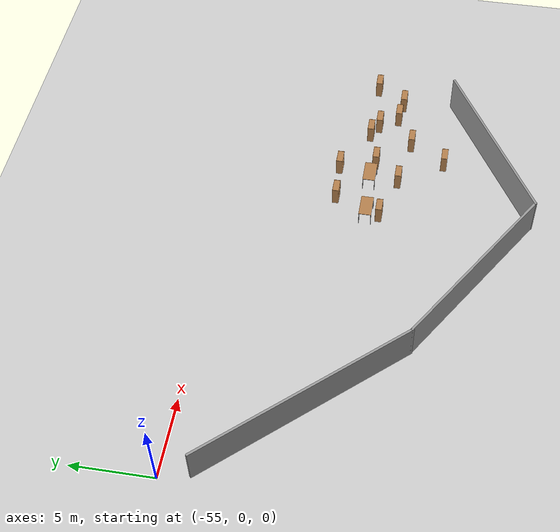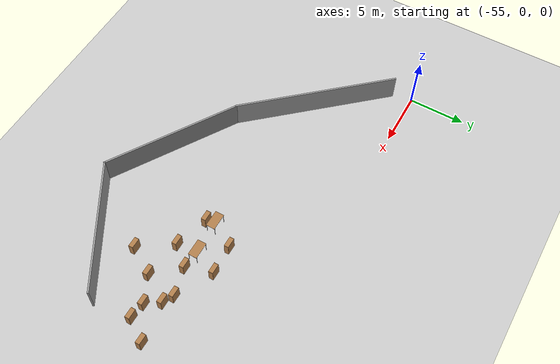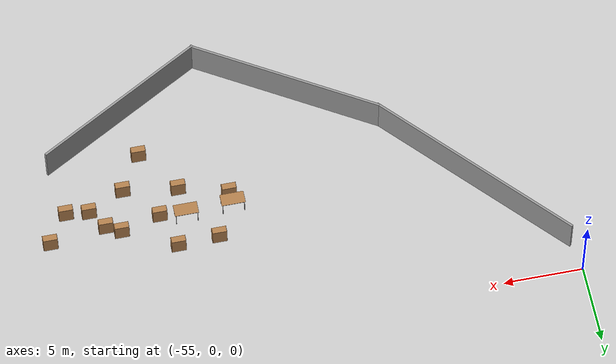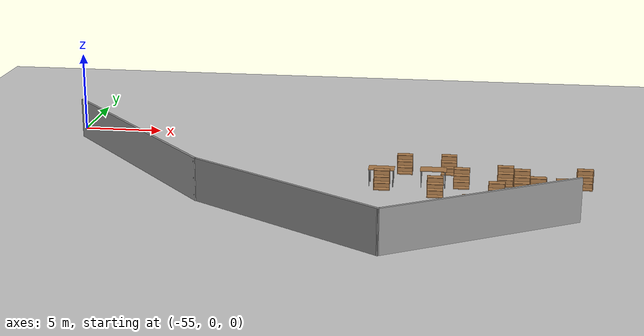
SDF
<sdf version="1.6">
 <world name="default">
  <model name="ground_plane">
   <static>1</static>
   <link name="link">
    <collision name="collision">
     <geometry><plane><normal>0 0 1</normal><size>100 100</size></plane></geometry>
     <surface><friction><ode><mu>100</mu><mu2>50</mu2></ode></friction></surface>
    </collision>
    <visual name="visual">
     <cast_shadows>0</cast_shadows>
     <geometry><plane><normal>0 0 1</normal><size>100 100</size></plane></geometry>
     <material>
      <script><uri>file://media/materials/scripts/gazebo.material</uri><name>Gazebo/Grey</name></script>
     </material>
    </visual>
   </link>
  </model>
  <model name="mall_new_reduce_size">
   <pose>-6.8092 7.5529 0 0 -0 0</pose>
   <link name="Wall_313">
    <collision name="Wall_313_Collision">
     <geometry><box><size>11.9714 0.15 2.5</size></box></geometry>
     <pose>0 0 1.25 0 -0 0</pose>
    </collision>
    <visual name="Wall_313_Visual">
     <pose>0 0 1.25 0 -0 0</pose>
     <geometry><box><size>11.9714 0.15 2.5</size></box></geometry>
     <material>
      <script><uri>file://media/materials/scripts/gazebo.material</uri><name>Gazebo/Grey</name></script>
      <ambient>1 1 1 1</ambient>
     </material>
     <meta><layer>0</layer></meta>
    </visual>
    <pose>-22.2421 -23.7733 0 0 -0 -2.61833</pose>
   </link>
   <link name="Wall_314">
    <collision name="Wall_314_Collision">
     <geometry><box><size>12.6291 0.15 2.5</size></box></geometry>
     <pose>0 0 1.25 0 -0 0</pose>
    </collision>
    <visual name="Wall_314_Visual">
     <pose>0 0 1.25 0 -0 0</pose>
     <geometry><box><size>12.6291 0.15 2.5</size></box></geometry>
     <material>
      <script><uri>file://media/materials/scripts/gazebo.material</uri><name>Gazebo/Grey</name></script>
      <ambient>1 1 1 1</ambient>
     </material>
     <meta><layer>0</layer></meta>
    </visual>
    <pose>-32.6669 -23.463 0 0 -0 2.5911</pose>
   </link>
   <link name="Wall_315">
    <collision name="Wall_315_Collision">
     <geometry><box><size>14.7593 0.15 2.5</size></box></geometry>
     <pose>0 0 1.25 0 -0 0</pose>
    </collision>
    <visual name="Wall_315_Visual">
     <pose>0 0 1.25 0 -0 0</pose>
     <geometry><box><size>14.7593 0.15 2.5</size></box></geometry>
     <material>
      <script><uri>file://media/materials/scripts/gazebo.material</uri><name>Gazebo/Grey</name></script>
      <ambient>1 1 1 1</ambient>
     </material>
     <meta><layer>0</layer></meta>
    </visual>
    <pose>-42.8797 -14.8029 0 0 -0 2.30518</pose>
   </link>
   <static>1</static>
  </model>
  <model name="bookshelf">
   <static>1</static>
   <link name="link">
    <inertial><mass>1</mass></inertial>
    <collision name="back">
     <pose>0 0.005 0.6 0 -0 0</pose>
     <geometry><box><size>0.9 0.01 1.2</size></box></geometry>
    </collision>
    <visual name="visual1">
     <pose>0 0.005 0.6 0 -0 0</pose>
     <geometry><box><size>0.9 0.01 1.2</size></box></geometry>
     <material>
      <script><uri>file://media/materials/scripts/gazebo.material</uri><name>Gazebo/Wood</name></script>
     </material>
    </visual>
    <collision name="left_side">
     <pose>0.45 -0.195 0.6 0 -0 0</pose>
     <geometry><box><size>0.02 0.4 1.2</size></box></geometry>
    </collision>
    <visual name="visual2">
     <pose>0.45 -0.195 0.6 0 -0 0</pose>
     <geometry><box><size>0.02 0.4 1.2</size></box></geometry>
     <material>
      <script><uri>file://media/materials/scripts/gazebo.material</uri><name>Gazebo/Wood</name></script>
     </material>
    </visual>
    <collision name="right_side">
     <pose>-0.45 -0.195 0.6 0 -0 0</pose>
     <geometry><box><size>0.02 0.4 1.2</size></box></geometry>
    </collision>
    <visual name="visual3">
     <pose>-0.45 -0.195 0.6 0 -0 0</pose>
     <geometry><box><size>0.02 0.4 1.2</size></box></geometry>
     <material>
      <script><uri>file://media/materials/scripts/gazebo.material</uri><name>Gazebo/Wood</name></script>
     </material>
    </visual>
    <collision name="bottom">
     <pose>0 -0.195 0.03 0 -0 0</pose>
     <geometry><box><size>0.88 0.4 0.06</size></box></geometry>
    </collision>
    <visual name="visual4">
     <pose>0 -0.195 0.03 0 -0 0</pose>
     <geometry><box><size>0.88 0.4 0.06</size></box></geometry>
     <material>
      <script><uri>file://media/materials/scripts/gazebo.material</uri><name>Gazebo/Wood</name></script>
     </material>
    </visual>
    <collision name="top">
     <pose>0 -0.195 1.19 0 -0 0</pose>
     <geometry><box><size>0.88 0.4 0.02</size></box></geometry>
    </collision>
    <visual name="visual5">
     <pose>0 -0.195 1.19 0 -0 0</pose>
     <geometry><box><size>0.88 0.4 0.02</size></box></geometry>
     <material>
      <script><uri>file://media/materials/scripts/gazebo.material</uri><name>Gazebo/Wood</name></script>
     </material>
    </visual>
    <collision name="low_shelf">
     <pose>0 -0.195 0.43 0 -0 0</pose>
     <geometry><box><size>0.88 0.4 0.02</size></box></geometry>
    </collision>
    <visual name="visual6">
     <pose>0 -0.195 0.43 0 -0 0</pose>
     <geometry><box><size>0.88 0.4 0.02</size></box></geometry>
     <material>
      <script><uri>file://media/materials/scripts/gazebo.material</uri><name>Gazebo/Wood</name></script>
     </material>
    </visual>
    <collision name="high_shelf">
     <pose>0 -0.195 0.8 0 -0 0</pose>
     <geometry><box><size>0.88 0.4 0.02</size></box></geometry>
    </collision>
    <visual name="visual7">
     <pose>0 -0.195 0.8 0 -0 0</pose>
     <geometry><box><size>0.88 0.4 0.02</size></box></geometry>
     <material>
      <script><uri>file://media/materials/scripts/gazebo.material</uri><name>Gazebo/Wood</name></script>
     </material>
    </visual>
   </link>
   <pose>-23.1977 -7.90874 0 0 -0 0</pose>
  </model>
  <model name="bookshelf_0">
   <static>1</static>
   <link name="link">
    <inertial><mass>1</mass></inertial>
    <collision name="back">
     <pose>0 0.005 0.6 0 -0 0</pose>
     <geometry><box><size>0.9 0.01 1.2</size></box></geometry>
    </collision>
    <visual name="visual1">
     <pose>0 0.005 0.6 0 -0 0</pose>
     <geometry><box><size>0.9 0.01 1.2</size></box></geometry>
     <material>
      <script><uri>file://media/materials/scripts/gazebo.material</uri><name>Gazebo/Wood</name></script>
     </material>
    </visual>
    <collision name="left_side">
     <pose>0.45 -0.195 0.6 0 -0 0</pose>
     <geometry><box><size>0.02 0.4 1.2</size></box></geometry>
    </collision>
    <visual name="visual2">
     <pose>0.45 -0.195 0.6 0 -0 0</pose>
     <geometry><box><size>0.02 0.4 1.2</size></box></geometry>
     <material>
      <script><uri>file://media/materials/scripts/gazebo.material</uri><name>Gazebo/Wood</name></script>
     </material>
    </visual>
    <collision name="right_side">
     <pose>-0.45 -0.195 0.6 0 -0 0</pose>
     <geometry><box><size>0.02 0.4 1.2</size></box></geometry>
    </collision>
    <visual name="visual3">
     <pose>-0.45 -0.195 0.6 0 -0 0</pose>
     <geometry><box><size>0.02 0.4 1.2</size></box></geometry>
     <material>
      <script><uri>file://media/materials/scripts/gazebo.material</uri><name>Gazebo/Wood</name></script>
     </material>
    </visual>
    <collision name="bottom">
     <pose>0 -0.195 0.03 0 -0 0</pose>
     <geometry><box><size>0.88 0.4 0.06</size></box></geometry>
    </collision>
    <visual name="visual4">
     <pose>0 -0.195 0.03 0 -0 0</pose>
     <geometry><box><size>0.88 0.4 0.06</size></box></geometry>
     <material>
      <script><uri>file://media/materials/scripts/gazebo.material</uri><name>Gazebo/Wood</name></script>
     </material>
    </visual>
    <collision name="top">
     <pose>0 -0.195 1.19 0 -0 0</pose>
     <geometry><box><size>0.88 0.4 0.02</size></box></geometry>
    </collision>
    <visual name="visual5">
     <pose>0 -0.195 1.19 0 -0 0</pose>
     <geometry><box><size>0.88 0.4 0.02</size></box></geometry>
     <material>
      <script><uri>file://media/materials/scripts/gazebo.material</uri><name>Gazebo/Wood</name></script>
     </material>
    </visual>
    <collision name="low_shelf">
     <pose>0 -0.195 0.43 0 -0 0</pose>
     <geometry><box><size>0.88 0.4 0.02</size></box></geometry>
    </collision>
    <visual name="visual6">
     <pose>0 -0.195 0.43 0 -0 0</pose>
     <geometry><box><size>0.88 0.4 0.02</size></box></geometry>
     <material>
      <script><uri>file://media/materials/scripts/gazebo.material</uri><name>Gazebo/Wood</name></script>
     </material>
    </visual>
    <collision name="high_shelf">
     <pose>0 -0.195 0.8 0 -0 0</pose>
     <geometry><box><size>0.88 0.4 0.02</size></box></geometry>
    </collision>
    <visual name="visual7">
     <pose>0 -0.195 0.8 0 -0 0</pose>
     <geometry><box><size>0.88 0.4 0.02</size></box></geometry>
     <material>
      <script><uri>file://media/materials/scripts/gazebo.material</uri><name>Gazebo/Wood</name></script>
     </material>
    </visual>
   </link>
   <pose>-24.4874 -9.77835 0 0 -0 0</pose>
  </model>
  <model name="bookshelf_2">
   <static>1</static>
   <link name="link">
    <inertial><mass>1</mass></inertial>
    <collision name="back">
     <pose>0 0.005 0.6 0 -0 0</pose>
     <geometry><box><size>0.9 0.01 1.2</size></box></geometry>
    </collision>
    <visual name="visual1">
     <pose>0 0.005 0.6 0 -0 0</pose>
     <geometry><box><size>0.9 0.01 1.2</size></box></geometry>
     <material>
      <script><uri>file://media/materials/scripts/gazebo.material</uri><name>Gazebo/Wood</name></script>
     </material>
    </visual>
    <collision name="left_side">
     <pose>0.45 -0.195 0.6 0 -0 0</pose>
     <geometry><box><size>0.02 0.4 1.2</size></box></geometry>
    </collision>
    <visual name="visual2">
     <pose>0.45 -0.195 0.6 0 -0 0</pose>
     <geometry><box><size>0.02 0.4 1.2</size></box></geometry>
     <material>
      <script><uri>file://media/materials/scripts/gazebo.material</uri><name>Gazebo/Wood</name></script>
     </material>
    </visual>
    <collision name="right_side">
     <pose>-0.45 -0.195 0.6 0 -0 0</pose>
     <geometry><box><size>0.02 0.4 1.2</size></box></geometry>
    </collision>
    <visual name="visual3">
     <pose>-0.45 -0.195 0.6 0 -0 0</pose>
     <geometry><box><size>0.02 0.4 1.2</size></box></geometry>
     <material>
      <script><uri>file://media/materials/scripts/gazebo.material</uri><name>Gazebo/Wood</name></script>
     </material>
    </visual>
    <collision name="bottom">
     <pose>0 -0.195 0.03 0 -0 0</pose>
     <geometry><box><size>0.88 0.4 0.06</size></box></geometry>
    </collision>
    <visual name="visual4">
     <pose>0 -0.195 0.03 0 -0 0</pose>
     <geometry><box><size>0.88 0.4 0.06</size></box></geometry>
     <material>
      <script><uri>file://media/materials/scripts/gazebo.material</uri><name>Gazebo/Wood</name></script>
     </material>
    </visual>
    <collision name="top">
     <pose>0 -0.195 1.19 0 -0 0</pose>
     <geometry><box><size>0.88 0.4 0.02</size></box></geometry>
    </collision>
    <visual name="visual5">
     <pose>0 -0.195 1.19 0 -0 0</pose>
     <geometry><box><size>0.88 0.4 0.02</size></box></geometry>
     <material>
      <script><uri>file://media/materials/scripts/gazebo.material</uri><name>Gazebo/Wood</name></script>
     </material>
    </visual>
    <collision name="low_shelf">
     <pose>0 -0.195 0.43 0 -0 0</pose>
     <geometry><box><size>0.88 0.4 0.02</size></box></geometry>
    </collision>
    <visual name="visual6">
     <pose>0 -0.195 0.43 0 -0 0</pose>
     <geometry><box><size>0.88 0.4 0.02</size></box></geometry>
     <material>
      <script><uri>file://media/materials/scripts/gazebo.material</uri><name>Gazebo/Wood</name></script>
     </material>
    </visual>
    <collision name="high_shelf">
     <pose>0 -0.195 0.8 0 -0 0</pose>
     <geometry><box><size>0.88 0.4 0.02</size></box></geometry>
    </collision>
    <visual name="visual7">
     <pose>0 -0.195 0.8 0 -0 0</pose>
     <geometry><box><size>0.88 0.4 0.02</size></box></geometry>
     <material>
      <script><uri>file://media/materials/scripts/gazebo.material</uri><name>Gazebo/Wood</name></script>
     </material>
    </visual>
   </link>
   <pose>-26.7515 -8.37465 0 0 -0 0</pose>
  </model>
  <model name="bookshelf_3">
   <static>1</static>
   <link name="link">
    <inertial><mass>1</mass></inertial>
    <collision name="back">
     <pose>0 0.005 0.6 0 -0 0</pose>
     <geometry><box><size>0.9 0.01 1.2</size></box></geometry>
    </collision>
    <visual name="visual1">
     <pose>0 0.005 0.6 0 -0 0</pose>
     <geometry><box><size>0.9 0.01 1.2</size></box></geometry>
     <material>
      <script><uri>file://media/materials/scripts/gazebo.material</uri><name>Gazebo/Wood</name></script>
     </material>
    </visual>
    <collision name="left_side">
     <pose>0.45 -0.195 0.6 0 -0 0</pose>
     <geometry><box><size>0.02 0.4 1.2</size></box></geometry>
    </collision>
    <visual name="visual2">
     <pose>0.45 -0.195 0.6 0 -0 0</pose>
     <geometry><box><size>0.02 0.4 1.2</size></box></geometry>
     <material>
      <script><uri>file://media/materials/scripts/gazebo.material</uri><name>Gazebo/Wood</name></script>
     </material>
    </visual>
    <collision name="right_side">
     <pose>-0.45 -0.195 0.6 0 -0 0</pose>
     <geometry><box><size>0.02 0.4 1.2</size></box></geometry>
    </collision>
    <visual name="visual3">
     <pose>-0.45 -0.195 0.6 0 -0 0</pose>
     <geometry><box><size>0.02 0.4 1.2</size></box></geometry>
     <material>
      <script><uri>file://media/materials/scripts/gazebo.material</uri><name>Gazebo/Wood</name></script>
     </material>
    </visual>
    <collision name="bottom">
     <pose>0 -0.195 0.03 0 -0 0</pose>
     <geometry><box><size>0.88 0.4 0.06</size></box></geometry>
    </collision>
    <visual name="visual4">
     <pose>0 -0.195 0.03 0 -0 0</pose>
     <geometry><box><size>0.88 0.4 0.06</size></box></geometry>
     <material>
      <script><uri>file://media/materials/scripts/gazebo.material</uri><name>Gazebo/Wood</name></script>
     </material>
    </visual>
    <collision name="top">
     <pose>0 -0.195 1.19 0 -0 0</pose>
     <geometry><box><size>0.88 0.4 0.02</size></box></geometry>
    </collision>
    <visual name="visual5">
     <pose>0 -0.195 1.19 0 -0 0</pose>
     <geometry><box><size>0.88 0.4 0.02</size></box></geometry>
     <material>
      <script><uri>file://media/materials/scripts/gazebo.material</uri><name>Gazebo/Wood</name></script>
     </material>
    </visual>
    <collision name="low_shelf">
     <pose>0 -0.195 0.43 0 -0 0</pose>
     <geometry><box><size>0.88 0.4 0.02</size></box></geometry>
    </collision>
    <visual name="visual6">
     <pose>0 -0.195 0.43 0 -0 0</pose>
     <geometry><box><size>0.88 0.4 0.02</size></box></geometry>
     <material>
      <script><uri>file://media/materials/scripts/gazebo.material</uri><name>Gazebo/Wood</name></script>
     </material>
    </visual>
    <collision name="high_shelf">
     <pose>0 -0.195 0.8 0 -0 0</pose>
     <geometry><box><size>0.88 0.4 0.02</size></box></geometry>
    </collision>
    <visual name="visual7">
     <pose>0 -0.195 0.8 0 -0 0</pose>
     <geometry><box><size>0.88 0.4 0.02</size></box></geometry>
     <material>
      <script><uri>file://media/materials/scripts/gazebo.material</uri><name>Gazebo/Wood</name></script>
     </material>
    </visual>
   </link>
   <pose>-30.165 -8.54974 0 0 -0 0</pose>
  </model>
  <model name="bookshelf_4">
   <static>1</static>
   <link name="link">
    <inertial><mass>1</mass></inertial>
    <collision name="back">
     <pose>0 0.005 0.6 0 -0 0</pose>
     <geometry><box><size>0.9 0.01 1.2</size></box></geometry>
    </collision>
    <visual name="visual1">
     <pose>0 0.005 0.6 0 -0 0</pose>
     <geometry><box><size>0.9 0.01 1.2</size></box></geometry>
     <material>
      <script><uri>file://media/materials/scripts/gazebo.material</uri><name>Gazebo/Wood</name></script>
     </material>
    </visual>
    <collision name="left_side">
     <pose>0.45 -0.195 0.6 0 -0 0</pose>
     <geometry><box><size>0.02 0.4 1.2</size></box></geometry>
    </collision>
    <visual name="visual2">
     <pose>0.45 -0.195 0.6 0 -0 0</pose>
     <geometry><box><size>0.02 0.4 1.2</size></box></geometry>
     <material>
      <script><uri>file://media/materials/scripts/gazebo.material</uri><name>Gazebo/Wood</name></script>
     </material>
    </visual>
    <collision name="right_side">
     <pose>-0.45 -0.195 0.6 0 -0 0</pose>
     <geometry><box><size>0.02 0.4 1.2</size></box></geometry>
    </collision>
    <visual name="visual3">
     <pose>-0.45 -0.195 0.6 0 -0 0</pose>
     <geometry><box><size>0.02 0.4 1.2</size></box></geometry>
     <material>
      <script><uri>file://media/materials/scripts/gazebo.material</uri><name>Gazebo/Wood</name></script>
     </material>
    </visual>
    <collision name="bottom">
     <pose>0 -0.195 0.03 0 -0 0</pose>
     <geometry><box><size>0.88 0.4 0.06</size></box></geometry>
    </collision>
    <visual name="visual4">
     <pose>0 -0.195 0.03 0 -0 0</pose>
     <geometry><box><size>0.88 0.4 0.06</size></box></geometry>
     <material>
      <script><uri>file://media/materials/scripts/gazebo.material</uri><name>Gazebo/Wood</name></script>
     </material>
    </visual>
    <collision name="top">
     <pose>0 -0.195 1.19 0 -0 0</pose>
     <geometry><box><size>0.88 0.4 0.02</size></box></geometry>
    </collision>
    <visual name="visual5">
     <pose>0 -0.195 1.19 0 -0 0</pose>
     <geometry><box><size>0.88 0.4 0.02</size></box></geometry>
     <material>
      <script><uri>file://media/materials/scripts/gazebo.material</uri><name>Gazebo/Wood</name></script>
     </material>
    </visual>
    <collision name="low_shelf">
     <pose>0 -0.195 0.43 0 -0 0</pose>
     <geometry><box><size>0.88 0.4 0.02</size></box></geometry>
    </collision>
    <visual name="visual6">
     <pose>0 -0.195 0.43 0 -0 0</pose>
     <geometry><box><size>0.88 0.4 0.02</size></box></geometry>
     <material>
      <script><uri>file://media/materials/scripts/gazebo.material</uri><name>Gazebo/Wood</name></script>
     </material>
    </visual>
    <collision name="high_shelf">
     <pose>0 -0.195 0.8 0 -0 0</pose>
     <geometry><box><size>0.88 0.4 0.02</size></box></geometry>
    </collision>
    <visual name="visual7">
     <pose>0 -0.195 0.8 0 -0 0</pose>
     <geometry><box><size>0.88 0.4 0.02</size></box></geometry>
     <material>
      <script><uri>file://media/materials/scripts/gazebo.material</uri><name>Gazebo/Wood</name></script>
     </material>
    </visual>
   </link>
   <pose>-28.2168 -10.7133 0 0 -0 0</pose>
  </model>
  <model name="bookshelf_5">
   <static>1</static>
   <link name="link">
    <inertial><mass>1</mass></inertial>
    <collision name="back">
     <pose>0 0.005 0.6 0 -0 0</pose>
     <geometry><box><size>0.9 0.01 1.2</size></box></geometry>
    </collision>
    <visual name="visual1">
     <pose>0 0.005 0.6 0 -0 0</pose>
     <geometry><box><size>0.9 0.01 1.2</size></box></geometry>
     <material>
      <script><uri>file://media/materials/scripts/gazebo.material</uri><name>Gazebo/Wood</name></script>
     </material>
    </visual>
    <collision name="left_side">
     <pose>0.45 -0.195 0.6 0 -0 0</pose>
     <geometry><box><size>0.02 0.4 1.2</size></box></geometry>
    </collision>
    <visual name="visual2">
     <pose>0.45 -0.195 0.6 0 -0 0</pose>
     <geometry><box><size>0.02 0.4 1.2</size></box></geometry>
     <material>
      <script><uri>file://media/materials/scripts/gazebo.material</uri><name>Gazebo/Wood</name></script>
     </material>
    </visual>
    <collision name="right_side">
     <pose>-0.45 -0.195 0.6 0 -0 0</pose>
     <geometry><box><size>0.02 0.4 1.2</size></box></geometry>
    </collision>
    <visual name="visual3">
     <pose>-0.45 -0.195 0.6 0 -0 0</pose>
     <geometry><box><size>0.02 0.4 1.2</size></box></geometry>
     <material>
      <script><uri>file://media/materials/scripts/gazebo.material</uri><name>Gazebo/Wood</name></script>
     </material>
    </visual>
    <collision name="bottom">
     <pose>0 -0.195 0.03 0 -0 0</pose>
     <geometry><box><size>0.88 0.4 0.06</size></box></geometry>
    </collision>
    <visual name="visual4">
     <pose>0 -0.195 0.03 0 -0 0</pose>
     <geometry><box><size>0.88 0.4 0.06</size></box></geometry>
     <material>
      <script><uri>file://media/materials/scripts/gazebo.material</uri><name>Gazebo/Wood</name></script>
     </material>
    </visual>
    <collision name="top">
     <pose>0 -0.195 1.19 0 -0 0</pose>
     <geometry><box><size>0.88 0.4 0.02</size></box></geometry>
    </collision>
    <visual name="visual5">
     <pose>0 -0.195 1.19 0 -0 0</pose>
     <geometry><box><size>0.88 0.4 0.02</size></box></geometry>
     <material>
      <script><uri>file://media/materials/scripts/gazebo.material</uri><name>Gazebo/Wood</name></script>
     </material>
    </visual>
    <collision name="low_shelf">
     <pose>0 -0.195 0.43 0 -0 0</pose>
     <geometry><box><size>0.88 0.4 0.02</size></box></geometry>
    </collision>
    <visual name="visual6">
     <pose>0 -0.195 0.43 0 -0 0</pose>
     <geometry><box><size>0.88 0.4 0.02</size></box></geometry>
     <material>
      <script><uri>file://media/materials/scripts/gazebo.material</uri><name>Gazebo/Wood</name></script>
     </material>
    </visual>
    <collision name="high_shelf">
     <pose>0 -0.195 0.8 0 -0 0</pose>
     <geometry><box><size>0.88 0.4 0.02</size></box></geometry>
    </collision>
    <visual name="visual7">
     <pose>0 -0.195 0.8 0 -0 0</pose>
     <geometry><box><size>0.88 0.4 0.02</size></box></geometry>
     <material>
      <script><uri>file://media/materials/scripts/gazebo.material</uri><name>Gazebo/Wood</name></script>
     </material>
    </visual>
   </link>
   <pose>-25.9084 -9.60206 0 0 -0 0</pose>
  </model>
  <model name="bookshelf_6">
   <static>1</static>
   <link name="link">
    <inertial><mass>1</mass></inertial>
    <collision name="back">
     <pose>0 0.005 0.6 0 -0 0</pose>
     <geometry><box><size>0.9 0.01 1.2</size></box></geometry>
    </collision>
    <visual name="visual1">
     <pose>0 0.005 0.6 0 -0 0</pose>
     <geometry><box><size>0.9 0.01 1.2</size></box></geometry>
     <material>
      <script><uri>file://media/materials/scripts/gazebo.material</uri><name>Gazebo/Wood</name></script>
     </material>
    </visual>
    <collision name="left_side">
     <pose>0.45 -0.195 0.6 0 -0 0</pose>
     <geometry><box><size>0.02 0.4 1.2</size></box></geometry>
    </collision>
    <visual name="visual2">
     <pose>0.45 -0.195 0.6 0 -0 0</pose>
     <geometry><box><size>0.02 0.4 1.2</size></box></geometry>
     <material>
      <script><uri>file://media/materials/scripts/gazebo.material</uri><name>Gazebo/Wood</name></script>
     </material>
    </visual>
    <collision name="right_side">
     <pose>-0.45 -0.195 0.6 0 -0 0</pose>
     <geometry><box><size>0.02 0.4 1.2</size></box></geometry>
    </collision>
    <visual name="visual3">
     <pose>-0.45 -0.195 0.6 0 -0 0</pose>
     <geometry><box><size>0.02 0.4 1.2</size></box></geometry>
     <material>
      <script><uri>file://media/materials/scripts/gazebo.material</uri><name>Gazebo/Wood</name></script>
     </material>
    </visual>
    <collision name="bottom">
     <pose>0 -0.195 0.03 0 -0 0</pose>
     <geometry><box><size>0.88 0.4 0.06</size></box></geometry>
    </collision>
    <visual name="visual4">
     <pose>0 -0.195 0.03 0 -0 0</pose>
     <geometry><box><size>0.88 0.4 0.06</size></box></geometry>
     <material>
      <script><uri>file://media/materials/scripts/gazebo.material</uri><name>Gazebo/Wood</name></script>
     </material>
    </visual>
    <collision name="top">
     <pose>0 -0.195 1.19 0 -0 0</pose>
     <geometry><box><size>0.88 0.4 0.02</size></box></geometry>
    </collision>
    <visual name="visual5">
     <pose>0 -0.195 1.19 0 -0 0</pose>
     <geometry><box><size>0.88 0.4 0.02</size></box></geometry>
     <material>
      <script><uri>file://media/materials/scripts/gazebo.material</uri><name>Gazebo/Wood</name></script>
     </material>
    </visual>
    <collision name="low_shelf">
     <pose>0 -0.195 0.43 0 -0 0</pose>
     <geometry><box><size>0.88 0.4 0.02</size></box></geometry>
    </collision>
    <visual name="visual6">
     <pose>0 -0.195 0.43 0 -0 0</pose>
     <geometry><box><size>0.88 0.4 0.02</size></box></geometry>
     <material>
      <script><uri>file://media/materials/scripts/gazebo.material</uri><name>Gazebo/Wood</name></script>
     </material>
    </visual>
    <collision name="high_shelf">
     <pose>0 -0.195 0.8 0 -0 0</pose>
     <geometry><box><size>0.88 0.4 0.02</size></box></geometry>
    </collision>
    <visual name="visual7">
     <pose>0 -0.195 0.8 0 -0 0</pose>
     <geometry><box><size>0.88 0.4 0.02</size></box></geometry>
     <material>
      <script><uri>file://media/materials/scripts/gazebo.material</uri><name>Gazebo/Wood</name></script>
     </material>
    </visual>
   </link>
   <pose>-27.6636 -7.88921 0 0 -0 0</pose>
  </model>
  <model name="bookshelf_7">
   <static>1</static>
   <link name="link">
    <inertial><mass>1</mass></inertial>
    <collision name="back">
     <pose>0 0.005 0.6 0 -0 0</pose>
     <geometry><box><size>0.9 0.01 1.2</size></box></geometry>
    </collision>
    <visual name="visual1">
     <pose>0 0.005 0.6 0 -0 0</pose>
     <geometry><box><size>0.9 0.01 1.2</size></box></geometry>
     <material>
      <script><uri>file://media/materials/scripts/gazebo.material</uri><name>Gazebo/Wood</name></script>
     </material>
    </visual>
    <collision name="left_side">
     <pose>0.45 -0.195 0.6 0 -0 0</pose>
     <geometry><box><size>0.02 0.4 1.2</size></box></geometry>
    </collision>
    <visual name="visual2">
     <pose>0.45 -0.195 0.6 0 -0 0</pose>
     <geometry><box><size>0.02 0.4 1.2</size></box></geometry>
     <material>
      <script><uri>file://media/materials/scripts/gazebo.material</uri><name>Gazebo/Wood</name></script>
     </material>
    </visual>
    <collision name="right_side">
     <pose>-0.45 -0.195 0.6 0 -0 0</pose>
     <geometry><box><size>0.02 0.4 1.2</size></box></geometry>
    </collision>
    <visual name="visual3">
     <pose>-0.45 -0.195 0.6 0 -0 0</pose>
     <geometry><box><size>0.02 0.4 1.2</size></box></geometry>
     <material>
      <script><uri>file://media/materials/scripts/gazebo.material</uri><name>Gazebo/Wood</name></script>
     </material>
    </visual>
    <collision name="bottom">
     <pose>0 -0.195 0.03 0 -0 0</pose>
     <geometry><box><size>0.88 0.4 0.06</size></box></geometry>
    </collision>
    <visual name="visual4">
     <pose>0 -0.195 0.03 0 -0 0</pose>
     <geometry><box><size>0.88 0.4 0.06</size></box></geometry>
     <material>
      <script><uri>file://media/materials/scripts/gazebo.material</uri><name>Gazebo/Wood</name></script>
     </material>
    </visual>
    <collision name="top">
     <pose>0 -0.195 1.19 0 -0 0</pose>
     <geometry><box><size>0.88 0.4 0.02</size></box></geometry>
    </collision>
    <visual name="visual5">
     <pose>0 -0.195 1.19 0 -0 0</pose>
     <geometry><box><size>0.88 0.4 0.02</size></box></geometry>
     <material>
      <script><uri>file://media/materials/scripts/gazebo.material</uri><name>Gazebo/Wood</name></script>
     </material>
    </visual>
    <collision name="low_shelf">
     <pose>0 -0.195 0.43 0 -0 0</pose>
     <geometry><box><size>0.88 0.4 0.02</size></box></geometry>
    </collision>
    <visual name="visual6">
     <pose>0 -0.195 0.43 0 -0 0</pose>
     <geometry><box><size>0.88 0.4 0.02</size></box></geometry>
     <material>
      <script><uri>file://media/materials/scripts/gazebo.material</uri><name>Gazebo/Wood</name></script>
     </material>
    </visual>
    <collision name="high_shelf">
     <pose>0 -0.195 0.8 0 -0 0</pose>
     <geometry><box><size>0.88 0.4 0.02</size></box></geometry>
    </collision>
    <visual name="visual7">
     <pose>0 -0.195 0.8 0 -0 0</pose>
     <geometry><box><size>0.88 0.4 0.02</size></box></geometry>
     <material>
      <script><uri>file://media/materials/scripts/gazebo.material</uri><name>Gazebo/Wood</name></script>
     </material>
    </visual>
   </link>
   <pose>-31.617 -10.1877 0 0 -0 0</pose>
  </model>
  <model name="bookshelf_8">
   <static>1</static>
   <link name="link">
    <inertial><mass>1</mass></inertial>
    <collision name="back">
     <pose>0 0.005 0.6 0 -0 0</pose>
     <geometry><box><size>0.9 0.01 1.2</size></box></geometry>
    </collision>
    <visual name="visual1">
     <pose>0 0.005 0.6 0 -0 0</pose>
     <geometry><box><size>0.9 0.01 1.2</size></box></geometry>
     <material>
      <script><uri>file://media/materials/scripts/gazebo.material</uri><name>Gazebo/Wood</name></script>
     </material>
    </visual>
    <collision name="left_side">
     <pose>0.45 -0.195 0.6 0 -0 0</pose>
     <geometry><box><size>0.02 0.4 1.2</size></box></geometry>
    </collision>
    <visual name="visual2">
     <pose>0.45 -0.195 0.6 0 -0 0</pose>
     <geometry><box><size>0.02 0.4 1.2</size></box></geometry>
     <material>
      <script><uri>file://media/materials/scripts/gazebo.material</uri><name>Gazebo/Wood</name></script>
     </material>
    </visual>
    <collision name="right_side">
     <pose>-0.45 -0.195 0.6 0 -0 0</pose>
     <geometry><box><size>0.02 0.4 1.2</size></box></geometry>
    </collision>
    <visual name="visual3">
     <pose>-0.45 -0.195 0.6 0 -0 0</pose>
     <geometry><box><size>0.02 0.4 1.2</size></box></geometry>
     <material>
      <script><uri>file://media/materials/scripts/gazebo.material</uri><name>Gazebo/Wood</name></script>
     </material>
    </visual>
    <collision name="bottom">
     <pose>0 -0.195 0.03 0 -0 0</pose>
     <geometry><box><size>0.88 0.4 0.06</size></box></geometry>
    </collision>
    <visual name="visual4">
     <pose>0 -0.195 0.03 0 -0 0</pose>
     <geometry><box><size>0.88 0.4 0.06</size></box></geometry>
     <material>
      <script><uri>file://media/materials/scripts/gazebo.material</uri><name>Gazebo/Wood</name></script>
     </material>
    </visual>
    <collision name="top">
     <pose>0 -0.195 1.19 0 -0 0</pose>
     <geometry><box><size>0.88 0.4 0.02</size></box></geometry>
    </collision>
    <visual name="visual5">
     <pose>0 -0.195 1.19 0 -0 0</pose>
     <geometry><box><size>0.88 0.4 0.02</size></box></geometry>
     <material>
      <script><uri>file://media/materials/scripts/gazebo.material</uri><name>Gazebo/Wood</name></script>
     </material>
    </visual>
    <collision name="low_shelf">
     <pose>0 -0.195 0.43 0 -0 0</pose>
     <geometry><box><size>0.88 0.4 0.02</size></box></geometry>
    </collision>
    <visual name="visual6">
     <pose>0 -0.195 0.43 0 -0 0</pose>
     <geometry><box><size>0.88 0.4 0.02</size></box></geometry>
     <material>
      <script><uri>file://media/materials/scripts/gazebo.material</uri><name>Gazebo/Wood</name></script>
     </material>
    </visual>
    <collision name="high_shelf">
     <pose>0 -0.195 0.8 0 -0 0</pose>
     <geometry><box><size>0.88 0.4 0.02</size></box></geometry>
    </collision>
    <visual name="visual7">
     <pose>0 -0.195 0.8 0 -0 0</pose>
     <geometry><box><size>0.88 0.4 0.02</size></box></geometry>
     <material>
      <script><uri>file://media/materials/scripts/gazebo.material</uri><name>Gazebo/Wood</name></script>
     </material>
    </visual>
   </link>
   <pose>-29.6346 -13.0364 0 0 -0 0</pose>
  </model>
  <model name="bookshelf_9">
   <static>1</static>
   <link name="link">
    <inertial><mass>1</mass></inertial>
    <collision name="back">
     <pose>0 0.005 0.6 0 -0 0</pose>
     <geometry><box><size>0.9 0.01 1.2</size></box></geometry>
    </collision>
    <visual name="visual1">
     <pose>0 0.005 0.6 0 -0 0</pose>
     <geometry><box><size>0.9 0.01 1.2</size></box></geometry>
     <material>
      <script><uri>file://media/materials/scripts/gazebo.material</uri><name>Gazebo/Wood</name></script>
     </material>
    </visual>
    <collision name="left_side">
     <pose>0.45 -0.195 0.6 0 -0 0</pose>
     <geometry><box><size>0.02 0.4 1.2</size></box></geometry>
    </collision>
    <visual name="visual2">
     <pose>0.45 -0.195 0.6 0 -0 0</pose>
     <geometry><box><size>0.02 0.4 1.2</size></box></geometry>
     <material>
      <script><uri>file://media/materials/scripts/gazebo.material</uri><name>Gazebo/Wood</name></script>
     </material>
    </visual>
    <collision name="right_side">
     <pose>-0.45 -0.195 0.6 0 -0 0</pose>
     <geometry><box><size>0.02 0.4 1.2</size></box></geometry>
    </collision>
    <visual name="visual3">
     <pose>-0.45 -0.195 0.6 0 -0 0</pose>
     <geometry><box><size>0.02 0.4 1.2</size></box></geometry>
     <material>
      <script><uri>file://media/materials/scripts/gazebo.material</uri><name>Gazebo/Wood</name></script>
     </material>
    </visual>
    <collision name="bottom">
     <pose>0 -0.195 0.03 0 -0 0</pose>
     <geometry><box><size>0.88 0.4 0.06</size></box></geometry>
    </collision>
    <visual name="visual4">
     <pose>0 -0.195 0.03 0 -0 0</pose>
     <geometry><box><size>0.88 0.4 0.06</size></box></geometry>
     <material>
      <script><uri>file://media/materials/scripts/gazebo.material</uri><name>Gazebo/Wood</name></script>
     </material>
    </visual>
    <collision name="top">
     <pose>0 -0.195 1.19 0 -0 0</pose>
     <geometry><box><size>0.88 0.4 0.02</size></box></geometry>
    </collision>
    <visual name="visual5">
     <pose>0 -0.195 1.19 0 -0 0</pose>
     <geometry><box><size>0.88 0.4 0.02</size></box></geometry>
     <material>
      <script><uri>file://media/materials/scripts/gazebo.material</uri><name>Gazebo/Wood</name></script>
     </material>
    </visual>
    <collision name="low_shelf">
     <pose>0 -0.195 0.43 0 -0 0</pose>
     <geometry><box><size>0.88 0.4 0.02</size></box></geometry>
    </collision>
    <visual name="visual6">
     <pose>0 -0.195 0.43 0 -0 0</pose>
     <geometry><box><size>0.88 0.4 0.02</size></box></geometry>
     <material>
      <script><uri>file://media/materials/scripts/gazebo.material</uri><name>Gazebo/Wood</name></script>
     </material>
    </visual>
    <collision name="high_shelf">
     <pose>0 -0.195 0.8 0 -0 0</pose>
     <geometry><box><size>0.88 0.4 0.02</size></box></geometry>
    </collision>
    <visual name="visual7">
     <pose>0 -0.195 0.8 0 -0 0</pose>
     <geometry><box><size>0.88 0.4 0.02</size></box></geometry>
     <material>
      <script><uri>file://media/materials/scripts/gazebo.material</uri><name>Gazebo/Wood</name></script>
     </material>
    </visual>
   </link>
   <pose>-33.5039 -6.37238 0 0 -0 0</pose>
  </model>
  <model name="bookshelf_11">
   <static>1</static>
   <link name="link">
    <inertial><mass>1</mass></inertial>
    <collision name="back">
     <pose>0 0.005 0.6 0 -0 0</pose>
     <geometry><box><size>0.9 0.01 1.2</size></box></geometry>
    </collision>
    <visual name="visual1">
     <pose>0 0.005 0.6 0 -0 0</pose>
     <geometry><box><size>0.9 0.01 1.2</size></box></geometry>
     <material>
      <script><uri>file://media/materials/scripts/gazebo.material</uri><name>Gazebo/Wood</name></script>
     </material>
    </visual>
    <collision name="left_side">
     <pose>0.45 -0.195 0.6 0 -0 0</pose>
     <geometry><box><size>0.02 0.4 1.2</size></box></geometry>
    </collision>
    <visual name="visual2">
     <pose>0.45 -0.195 0.6 0 -0 0</pose>
     <geometry><box><size>0.02 0.4 1.2</size></box></geometry>
     <material>
      <script><uri>file://media/materials/scripts/gazebo.material</uri><name>Gazebo/Wood</name></script>
     </material>
    </visual>
    <collision name="right_side">
     <pose>-0.45 -0.195 0.6 0 -0 0</pose>
     <geometry><box><size>0.02 0.4 1.2</size></box></geometry>
    </collision>
    <visual name="visual3">
     <pose>-0.45 -0.195 0.6 0 -0 0</pose>
     <geometry><box><size>0.02 0.4 1.2</size></box></geometry>
     <material>
      <script><uri>file://media/materials/scripts/gazebo.material</uri><name>Gazebo/Wood</name></script>
     </material>
    </visual>
    <collision name="bottom">
     <pose>0 -0.195 0.03 0 -0 0</pose>
     <geometry><box><size>0.88 0.4 0.06</size></box></geometry>
    </collision>
    <visual name="visual4">
     <pose>0 -0.195 0.03 0 -0 0</pose>
     <geometry><box><size>0.88 0.4 0.06</size></box></geometry>
     <material>
      <script><uri>file://media/materials/scripts/gazebo.material</uri><name>Gazebo/Wood</name></script>
     </material>
    </visual>
    <collision name="top">
     <pose>0 -0.195 1.19 0 -0 0</pose>
     <geometry><box><size>0.88 0.4 0.02</size></box></geometry>
    </collision>
    <visual name="visual5">
     <pose>0 -0.195 1.19 0 -0 0</pose>
     <geometry><box><size>0.88 0.4 0.02</size></box></geometry>
     <material>
      <script><uri>file://media/materials/scripts/gazebo.material</uri><name>Gazebo/Wood</name></script>
     </material>
    </visual>
    <collision name="low_shelf">
     <pose>0 -0.195 0.43 0 -0 0</pose>
     <geometry><box><size>0.88 0.4 0.02</size></box></geometry>
    </collision>
    <visual name="visual6">
     <pose>0 -0.195 0.43 0 -0 0</pose>
     <geometry><box><size>0.88 0.4 0.02</size></box></geometry>
     <material>
      <script><uri>file://media/materials/scripts/gazebo.material</uri><name>Gazebo/Wood</name></script>
     </material>
    </visual>
    <collision name="high_shelf">
     <pose>0 -0.195 0.8 0 -0 0</pose>
     <geometry><box><size>0.88 0.4 0.02</size></box></geometry>
    </collision>
    <visual name="visual7">
     <pose>0 -0.195 0.8 0 -0 0</pose>
     <geometry><box><size>0.88 0.4 0.02</size></box></geometry>
     <material>
      <script><uri>file://media/materials/scripts/gazebo.material</uri><name>Gazebo/Wood</name></script>
     </material>
    </visual>
   </link>
   <pose>-34.673 -9.31524 0 0 -0 0</pose>
  </model>
  <model name="bookshelf_12">
   <static>1</static>
   <link name="link">
    <inertial><mass>1</mass></inertial>
    <collision name="back">
     <pose>0 0.005 0.6 0 -0 0</pose>
     <geometry><box><size>0.9 0.01 1.2</size></box></geometry>
    </collision>
    <visual name="visual1">
     <pose>0 0.005 0.6 0 -0 0</pose>
     <geometry><box><size>0.9 0.01 1.2</size></box></geometry>
     <material>
      <script><uri>file://media/materials/scripts/gazebo.material</uri><name>Gazebo/Wood</name></script>
     </material>
    </visual>
    <collision name="left_side">
     <pose>0.45 -0.195 0.6 0 -0 0</pose>
     <geometry><box><size>0.02 0.4 1.2</size></box></geometry>
    </collision>
    <visual name="visual2">
     <pose>0.45 -0.195 0.6 0 -0 0</pose>
     <geometry><box><size>0.02 0.4 1.2</size></box></geometry>
     <material>
      <script><uri>file://media/materials/scripts/gazebo.material</uri><name>Gazebo/Wood</name></script>
     </material>
    </visual>
    <collision name="right_side">
     <pose>-0.45 -0.195 0.6 0 -0 0</pose>
     <geometry><box><size>0.02 0.4 1.2</size></box></geometry>
    </collision>
    <visual name="visual3">
     <pose>-0.45 -0.195 0.6 0 -0 0</pose>
     <geometry><box><size>0.02 0.4 1.2</size></box></geometry>
     <material>
      <script><uri>file://media/materials/scripts/gazebo.material</uri><name>Gazebo/Wood</name></script>
     </material>
    </visual>
    <collision name="bottom">
     <pose>0 -0.195 0.03 0 -0 0</pose>
     <geometry><box><size>0.88 0.4 0.06</size></box></geometry>
    </collision>
    <visual name="visual4">
     <pose>0 -0.195 0.03 0 -0 0</pose>
     <geometry><box><size>0.88 0.4 0.06</size></box></geometry>
     <material>
      <script><uri>file://media/materials/scripts/gazebo.material</uri><name>Gazebo/Wood</name></script>
     </material>
    </visual>
    <collision name="top">
     <pose>0 -0.195 1.19 0 -0 0</pose>
     <geometry><box><size>0.88 0.4 0.02</size></box></geometry>
    </collision>
    <visual name="visual5">
     <pose>0 -0.195 1.19 0 -0 0</pose>
     <geometry><box><size>0.88 0.4 0.02</size></box></geometry>
     <material>
      <script><uri>file://media/materials/scripts/gazebo.material</uri><name>Gazebo/Wood</name></script>
     </material>
    </visual>
    <collision name="low_shelf">
     <pose>0 -0.195 0.43 0 -0 0</pose>
     <geometry><box><size>0.88 0.4 0.02</size></box></geometry>
    </collision>
    <visual name="visual6">
     <pose>0 -0.195 0.43 0 -0 0</pose>
     <geometry><box><size>0.88 0.4 0.02</size></box></geometry>
     <material>
      <script><uri>file://media/materials/scripts/gazebo.material</uri><name>Gazebo/Wood</name></script>
     </material>
    </visual>
    <collision name="high_shelf">
     <pose>0 -0.195 0.8 0 -0 0</pose>
     <geometry><box><size>0.88 0.4 0.02</size></box></geometry>
    </collision>
    <visual name="visual7">
     <pose>0 -0.195 0.8 0 -0 0</pose>
     <geometry><box><size>0.88 0.4 0.02</size></box></geometry>
     <material>
      <script><uri>file://media/materials/scripts/gazebo.material</uri><name>Gazebo/Wood</name></script>
     </material>
    </visual>
   </link>
   <pose>-30.921 -6.2439 0 0 -0 0</pose>
  </model>
  <model name="table">
   <static>1</static>
   <link name="link">
    <collision name="surface">
     <pose>0 0 1 0 -0 0</pose>
     <geometry><box><size>1.5 0.8 0.03</size></box></geometry>
     <surface><friction><ode><mu>0.6</mu><mu2>0.6</mu2></ode></friction></surface>
    </collision>
    <visual name="visual1">
     <pose>0 0 1 0 -0 0</pose>
     <geometry><box><size>1.5 0.8 0.03</size></box></geometry>
     <material>
      <script><uri>file://media/materials/scripts/gazebo.material</uri><name>Gazebo/Wood</name></script>
     </material>
    </visual>
    <collision name="front_left_leg">
     <pose>0.68 0.38 0.5 0 -0 0</pose>
     <geometry><cylinder><radius>0.02</radius><length>1</length></cylinder></geometry>
    </collision>
    <visual name="front_left_leg">
     <pose>0.68 0.38 0.5 0 -0 0</pose>
     <geometry><cylinder><radius>0.02</radius><length>1</length></cylinder></geometry>
     <material>
      <script><uri>file://media/materials/scripts/gazebo.material</uri><name>Gazebo/Grey</name></script>
     </material>
    </visual>
    <collision name="front_right_leg">
     <pose>0.68 -0.38 0.5 0 -0 0</pose>
     <geometry><cylinder><radius>0.02</radius><length>1</length></cylinder></geometry>
    </collision>
    <visual name="front_right_leg">
     <pose>0.68 -0.38 0.5 0 -0 0</pose>
     <geometry><cylinder><radius>0.02</radius><length>1</length></cylinder></geometry>
     <material>
      <script><uri>file://media/materials/scripts/gazebo.material</uri><name>Gazebo/Grey</name></script>
     </material>
    </visual>
    <collision name="back_right_leg">
     <pose>-0.68 -0.38 0.5 0 -0 0</pose>
     <geometry><cylinder><radius>0.02</radius><length>1</length></cylinder></geometry>
    </collision>
    <visual name="back_right_leg">
     <pose>-0.68 -0.38 0.5 0 -0 0</pose>
     <geometry><cylinder><radius>0.02</radius><length>1</length></cylinder></geometry>
     <material>
      <script><uri>file://media/materials/scripts/gazebo.material</uri><name>Gazebo/Grey</name></script>
     </material>
    </visual>
    <collision name="back_left_leg">
     <pose>-0.68 0.38 0.5 0 -0 0</pose>
     <geometry><cylinder><radius>0.02</radius><length>1</length></cylinder></geometry>
    </collision>
    <visual name="back_left_leg">
     <pose>-0.68 0.38 0.5 0 -0 0</pose>
     <geometry><cylinder><radius>0.02</radius><length>1</length></cylinder></geometry>
     <material>
      <script><uri>file://media/materials/scripts/gazebo.material</uri><name>Gazebo/Grey</name></script>
     </material>
    </visual>
   </link>
   <pose>-31.7828 -8.53433 0 0 -0 0</pose>
  </model>
  <model name="table_0">
   <static>1</static>
   <link name="link">
    <collision name="surface">
     <pose>0 0 1 0 -0 0</pose>
     <geometry><box><size>1.5 0.8 0.03</size></box></geometry>
     <surface><friction><ode><mu>0.6</mu><mu2>0.6</mu2></ode></friction></surface>
    </collision>
    <visual name="visual1">
     <pose>0 0 1 0 -0 0</pose>
     <geometry><box><size>1.5 0.8 0.03</size></box></geometry>
     <material>
      <script><uri>file://media/materials/scripts/gazebo.material</uri><name>Gazebo/Wood</name></script>
     </material>
    </visual>
    <collision name="front_left_leg">
     <pose>0.68 0.38 0.5 0 -0 0</pose>
     <geometry><cylinder><radius>0.02</radius><length>1</length></cylinder></geometry>
    </collision>
    <visual name="front_left_leg">
     <pose>0.68 0.38 0.5 0 -0 0</pose>
     <geometry><cylinder><radius>0.02</radius><length>1</length></cylinder></geometry>
     <material>
      <script><uri>file://media/materials/scripts/gazebo.material</uri><name>Gazebo/Grey</name></script>
     </material>
    </visual>
    <collision name="front_right_leg">
     <pose>0.68 -0.38 0.5 0 -0 0</pose>
     <geometry><cylinder><radius>0.02</radius><length>1</length></cylinder></geometry>
    </collision>
    <visual name="front_right_leg">
     <pose>0.68 -0.38 0.5 0 -0 0</pose>
     <geometry><cylinder><radius>0.02</radius><length>1</length></cylinder></geometry>
     <material>
      <script><uri>file://media/materials/scripts/gazebo.material</uri><name>Gazebo/Grey</name></script>
     </material>
    </visual>
    <collision name="back_right_leg">
     <pose>-0.68 -0.38 0.5 0 -0 0</pose>
     <geometry><cylinder><radius>0.02</radius><length>1</length></cylinder></geometry>
    </collision>
    <visual name="back_right_leg">
     <pose>-0.68 -0.38 0.5 0 -0 0</pose>
     <geometry><cylinder><radius>0.02</radius><length>1</length></cylinder></geometry>
     <material>
      <script><uri>file://media/materials/scripts/gazebo.material</uri><name>Gazebo/Grey</name></script>
     </material>
    </visual>
    <collision name="back_left_leg">
     <pose>-0.68 0.38 0.5 0 -0 0</pose>
     <geometry><cylinder><radius>0.02</radius><length>1</length></cylinder></geometry>
    </collision>
    <visual name="back_left_leg">
     <pose>-0.68 0.38 0.5 0 -0 0</pose>
     <geometry><cylinder><radius>0.02</radius><length>1</length></cylinder></geometry>
     <material>
      <script><uri>file://media/materials/scripts/gazebo.material</uri><name>Gazebo/Grey</name></script>
     </material>
    </visual>
   </link>
   <pose>-34.7497 -8.68299 0 0 -0 0</pose>
  </model>
 </world>
</sdf>
